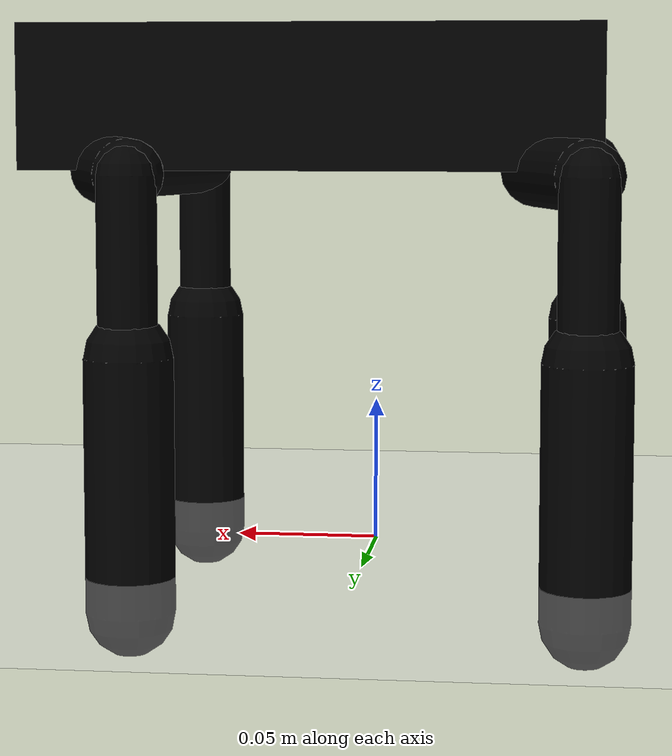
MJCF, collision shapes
<mujoco model="xgo">
  <compiler angle="radian"/>
  <option gravity="0 0 -9.81" timestep="0.008" iterations="100"/>

  <default>
    <joint damping="2.0" armature="0.01"/>
    <geom contype="0" conaffinity="0"/>
    <position kp="15" forcerange="-25 25" ctrlrange="-1.57 1.57"/>
  </default>

  <asset>
    <mesh name="base_link" content_type="model/stl" file="meshes/XGO/base_link.STL"/>
    <mesh name="lf_hip_link" content_type="model/stl" file="meshes/XGO/lf_hip_link.STL"/>
    <mesh name="lf_upper_leg_link" content_type="model/stl" file="meshes/XGO/lf_upper_leg_link.STL"/>
    <mesh name="lf_lower_leg_link" content_type="model/stl" file="meshes/XGO/lf_lower_leg_link.STL"/>
    <mesh name="rf_hip_link" content_type="model/stl" file="meshes/XGO/rf_hip_link.STL"/>
    <mesh name="rf_upper_leg_link" content_type="model/stl" file="meshes/XGO/rf_upper_leg_link.STL"/>
    <mesh name="rf_lower_leg_link" content_type="model/stl" file="meshes/XGO/rf_lower_leg_link.STL"/>
    <mesh name="lh_hip_link" content_type="model/stl" file="meshes/XGO/lh_hip_link.STL"/>
    <mesh name="lh_upper_leg_link" content_type="model/stl" file="meshes/XGO/lh_upper_leg_link.STL"/>
    <mesh name="lh_lower_leg_link" content_type="model/stl" file="meshes/XGO/lh_lower_leg_link.STL"/>
    <mesh name="rh_hip_link" content_type="model/stl" file="meshes/XGO/rh_hip_link.STL"/>
    <mesh name="rh_upper_leg_link" content_type="model/stl" file="meshes/XGO/rh_upper_leg_link.STL"/>
    <mesh name="rh_lower_leg_link" content_type="model/stl" file="meshes/XGO/rh_lower_leg_link.STL"/>
    <mesh name="camera_link" content_type="model/stl" file="meshes/XGO/camera_link.STL"/>
    <mesh name="laser_link" content_type="model/stl" file="meshes/XGO/laser_link.STL"/>
  </asset>

  <worldbody>
    <geom name="floor"
          type="plane"
          pos="0 0 0"
          size="5 5 0.1"
          rgba="1 1 1 1"
          contype="1"
          conaffinity="1"
          friction="2.0 0.5 0.5"/>

    <body name="base" pos="0 0 0.108">
      <freejoint/>

      <!-- inercia aproximada para debug -->
      <inertial pos="0 0 0.02"
                mass="0.8"
                diaginertia="0.003 0.008 0.009"/>

      <!-- visual -->
      <geom pos="0 0 0.01" quat="1 0 0 0" type="mesh" rgba="0.529412 0.54902 0.54902 1" mesh="base_link"/>
      <geom pos="0.075751 0 0.069653" type="mesh" rgba="0.054902 0.054902 0.054902 1" mesh="camera_link"/>
      <geom pos="-0.016732 4.4164e-05 0.11335" quat="1 0 0 0" type="mesh" rgba="1 1 1 1" mesh="laser_link"/>

      <!-- colisión simple base -->
      <geom type="box" pos="0.02 0 0.05" size="0.1 0.04 0.025"
            rgba="0 0 0 0" contype="1" conaffinity="1"/>

      <!-- LF -->
      <body name="lf_hip_link" pos="0.09332 0.022407 0.02454">
        <inertial pos="-0.013972 0.0250894 0.00927329"
                  quat="0.465985 0.505856 -0.63261 0.356052"
                  mass="0.0196003"
                  diaginertia="7.28129e-06 6.03463e-06 3.25491e-06"/>
        <joint name="lf_hip_joint" axis="-1 0 0" range="-1.57 1.57"/>
        <geom type="mesh" rgba="0.898039 0.917647 0.929412 1" mesh="lf_hip_link"/>
        <geom type="capsule" fromto="0 0 0 -0.018 0.045 0" size="0.012"
              rgba="0 0 0 0" contype="1" conaffinity="1"/>

        <body name="lf_upper_leg_link" pos="-0.018325 0.049313 0">
          <inertial pos="-0.00689428 -0.01867 -0.029948"
                    mass="0.0123429"
                    diaginertia="5.47497e-06 4.86024e-06 1.83455e-06"/>

          <joint name="lf_upper_leg_joint" axis="0 1 0" range="-1.57 1.57"/>
          <geom type="mesh" rgba="0.898039 0.917647 0.929412 1" mesh="lf_upper_leg_link"/>
          <geom type="capsule" fromto="0 0 0 0 0 -0.06" size="0.010"
                rgba="0 0 0 0" contype="1" conaffinity="1"/>

          <body name="lf_lower_leg_link" pos="0 -0.00072 -0.059896">
            <inertial pos="-0.0167812 -0.018325 -0.0316239"
                      quat="0.999267 0 0.0382793 0"
                      mass="0.0226879"
                      diaginertia="1.41901e-05 1.36483e-05 1.31741e-06"/>
            <joint name="lf_lower_leg_joint" axis="0 1 0" range="-1.57 1.57"/>
            <geom type="mesh" rgba="0.898039 0.917647 0.929412 1" mesh="lf_lower_leg_link"/>
            <geom type="capsule" fromto="0 0 0 0 0 -0.085" size="0.015"
                  rgba="0 0 0 0" contype="1" conaffinity="1"
                  friction="2.0 0.5 0.1"/>

          </body>
        </body>
      </body>

      <!-- RF -->
      <body name="rf_hip_link" pos="0.09332 -0.022517 0.02454">
        <inertial pos="-0.013972 -0.0250894 0.00927328"
                  quat="0.505856 0.465985 -0.356051 0.63261"
                  mass="0.00980013"
                  diaginertia="3.64065e-06 3.01731e-06 1.62745e-06"/>
        <joint name="rf_hip_joint" axis="-1 0 0" range="-1.57 1.57"/>
        <geom type="mesh" rgba="0.898039 0.917647 0.929412 1" mesh="rf_hip_link"/>
        <geom type="capsule" fromto="0 0 0 -0.018 -0.045 0" size="0.012"
              rgba="0 0 0 0" contype="1" conaffinity="1"/>

        <body name="rf_upper_leg_link" pos="-0.018325 -0.049313 0">
          <inertial pos="-0.00689428 0.0187 -0.029948"
                    mass="0.0123429"
                    diaginertia="5.47497e-06 4.86024e-06 1.83455e-06"/>
          <joint name="rf_upper_leg_joint" axis="0 1 0" range="-1.57 1.57"/>
          <geom type="mesh" rgba="0.898039 0.917647 0.929412 1" mesh="rf_upper_leg_link"/>
          <geom type="capsule" fromto="0 0 0 0 0 -0.06" size="0.010"
                rgba="0 0 0 0" contype="1" conaffinity="1"/>

          <body name="rf_lower_leg_link" pos="0 0 -0.059896">
            <inertial pos="-0.0167812 0.018325 -0.0316239"
                      quat="0.999267 0 0.0382793 0"
                      mass="0.0226879"
                      diaginertia="1.41901e-05 1.36483e-05 1.31741e-06"/>
            <joint name="rf_lower_leg_joint" axis="0 1 0" range="-1.57 1.57"/>
            <geom type="mesh" rgba="0.898039 0.917647 0.929412 1" mesh="rf_lower_leg_link"/>
            <geom type="capsule" fromto="0 0 0 0 0 -0.085" size="0.015"
                  rgba="0 0 0 0" contype="1" conaffinity="1"
                  friction="2.0 0.5 0.1"/>
          </body>
        </body>
      </body>

      <!-- LH -->
      <body name="lh_hip_link" pos="-0.05668 0.022407 0.02454">
        <inertial pos="-0.013972 0.0250894 0.00927329"
                  quat="0.465985 0.505856 -0.63261 0.356052"
                  mass="0.0196003"
                  diaginertia="7.28129e-06 6.03463e-06 3.25491e-06"/>
        <joint name="lh_hip_joint" axis="1 0 0" range="-1.57 1.57"/>
        <geom type="mesh" rgba="0.898039 0.917647 0.929412 1" mesh="lh_hip_link"/>
        <geom type="capsule" fromto="0 0 0 -0.018 0.045 0" size="0.012"
              rgba="0 0 0 0" contype="1" conaffinity="1"/>

        <body name="lh_upper_leg_link" pos="-0.018325 0.0493131 0">
          <inertial pos="-0.00689428 -0.01867 -0.029948"
                    mass="0.0123429"
                    diaginertia="5.47497e-06 4.86024e-06 1.83455e-06"/>
          <joint name="lh_upper_leg_joint" axis="0 1 0" range="-1.57 1.57"/>
          <geom type="mesh" rgba="0.898039 0.917647 0.929412 1" mesh="lh_upper_leg_link"/>
          <geom type="capsule" fromto="0 0 0 0 0 -0.06" size="0.010"
                rgba="0 0 0 0" contype="1" conaffinity="1"/>

          <body name="lh_lower_leg_link" pos="0 -0.00072 -0.059896">
            <inertial pos="-0.0167812 -0.018325 -0.0316239"
                      quat="0.999267 0 0.0382793 0"
                      mass="0.0226879"
                      diaginertia="1.41901e-05 1.36483e-05 1.31741e-06"/>
            <joint name="lh_lower_leg_joint" axis="0 1 0" range="-1.57 1.57"/>
            <geom type="mesh" rgba="0.898039 0.917647 0.929412 1" mesh="lh_lower_leg_link"/>
            <geom type="capsule" fromto="0 0 0 0 0 -0.085" size="0.015"
                  rgba="0 0 0 0" contype="1" conaffinity="1"
                  friction="2.0 0.5 0.1"/>
          </body>
        </body>
      </body>

      <!-- RH -->
      <body name="rh_hip_link" pos="-0.05668 -0.022517 0.02454">
        <inertial pos="-0.013972 -0.0250894 0.00927328"
                  quat="0.505856 0.465985 -0.356051 0.63261"
                  mass="0.00980013"
                  diaginertia="3.64065e-06 3.01731e-06 1.62745e-06"/>
        <joint name="rh_hip_joint" axis="1 0 0" range="-1.57 1.57"/>
        <geom type="mesh" rgba="0.898039 0.917647 0.929412 1" mesh="rh_hip_link"/>
        <geom type="capsule" fromto="0 0 0 -0.018 -0.045 0" size="0.012"
              rgba="0 0 0 0" contype="1" conaffinity="1"/>

        <body name="rh_upper_leg_link" pos="-0.018325 -0.049313 0">
          <inertial pos="-0.00689428 0.0187 -0.029948"
                    mass="0.0123429"
                    diaginertia="5.47497e-06 4.86024e-06 1.83455e-06"/>
          <joint name="rh_upper_leg_joint" axis="0 1 0" range="-1.57 1.57"/>
          <geom type="mesh" rgba="0.898039 0.917647 0.929412 1" mesh="rh_upper_leg_link"/>
          <geom type="capsule" fromto="0 0 0 0 0 -0.06" size="0.010"
                rgba="0 0 0 0" contype="1" conaffinity="1"/>

          <body name="rh_lower_leg_link" pos="0 0 -0.059896">
            <inertial pos="-0.0167812 0.018325 -0.0316239"
                      quat="0.999267 0 0.0382793 0"
                      mass="0.0226879"
                      diaginertia="1.41901e-05 1.36483e-05 1.31741e-06"/>
            <joint name="rh_lower_leg_joint" axis="0 1 0" range="-1.57 1.57"/>
            <geom type="mesh" rgba="0.898039 0.917647 0.929412 1" mesh="rh_lower_leg_link"/>
            <geom type="capsule" fromto="0 0 0 0 0 -0.085" size="0.015"
                  rgba="0 0 0 0" contype="1" conaffinity="1"
                  friction="2.0 0.5 0.1"/>
          </body>
        </body>
      </body>
    </body>
  </worldbody>

  <actuator>
    <motor joint="lf_hip_joint"       gear="1" ctrlrange="-25 25"/>
    <motor joint="lf_upper_leg_joint" gear="1" ctrlrange="-25 25"/>
    <motor joint="lf_lower_leg_joint" gear="1" ctrlrange="-25 25"/>

    <motor joint="rf_hip_joint"       gear="1" ctrlrange="-25 25"/>
    <motor joint="rf_upper_leg_joint" gear="1" ctrlrange="-25 25"/>
    <motor joint="rf_lower_leg_joint" gear="1" ctrlrange="-25 25"/>

    <motor joint="lh_hip_joint"       gear="1" ctrlrange="-25 25"/>
    <motor joint="lh_upper_leg_joint" gear="1" ctrlrange="-25 25"/>
    <motor joint="lh_lower_leg_joint" gear="1" ctrlrange="-25 25"/>

    <motor joint="rh_hip_joint"       gear="1" ctrlrange="-25 25"/>
    <motor joint="rh_upper_leg_joint" gear="1" ctrlrange="-25 25"/>
    <motor joint="rh_lower_leg_joint" gear="1" ctrlrange="-25 25"/>
</actuator>

  <keyframe>
    <key name="stand"
         qpos="0 0 0.108 1 0 0 0   0 0.65 -1.10   0 0.65 -1.10   0 0.65 -1.10   0 0.65 -1.10"
         ctrl="0 0.65 -1.10   0 0.65 -1.10   0 0.65 -1.10   0 0.65 -1.10"/>
  </keyframe>
</mujoco>
